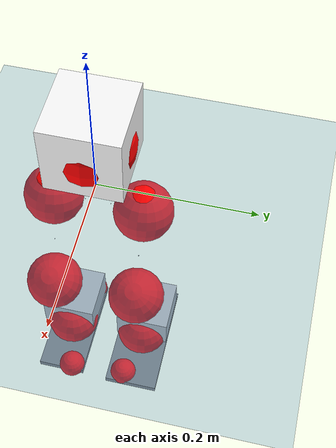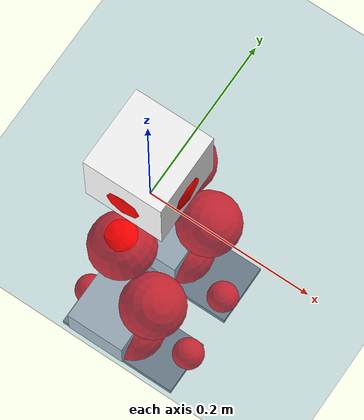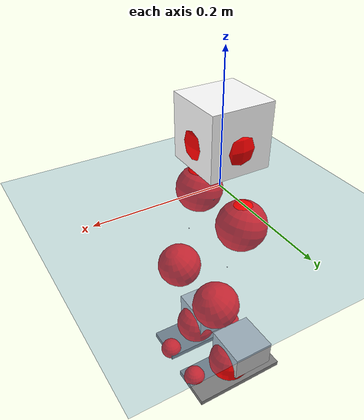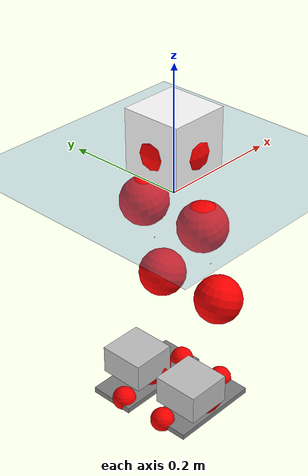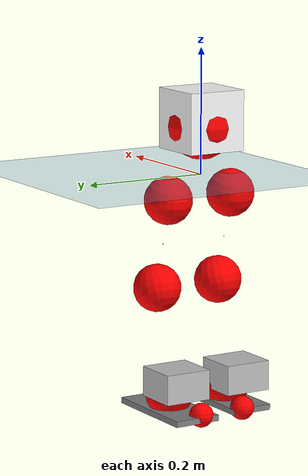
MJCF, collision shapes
<mujoco model="pi_12dof_release_v1">
  <compiler angle="radian" assetdir="assets" balanceinertia="true" inertiafromgeom="false"/>

  <option timestep="0.005" density="1.2" viscosity="2e-05"/>

  <size nkey="1"/>

  <visual>
    <quality shadowsize="8192"/>
    <map shadowclip="0.5"/>
  </visual>

  <default>
    <default class="/">
      <joint armature="0.01" damping="0.01" frictionloss="0.01"/>
      <geom contype="0" conaffinity="0" group="1" solref="-1000 -80"/>
      <site size="0.01 0.005 0.005" group="5"/>
      <general forcelimited="true" biastype="affine" gainprm="20" biasprm="0 -20 -0.5"/>
      <default class="foot">
        <geom size="0.0845 0.036 0.005" type="box" condim="6" group="4" priority="1" friction="0.9 0.2 0.2" solimp="0.015 1 0.005"/>
      </default>
      <default class="reward_collision_sphere">
        <geom group="5" rgba="1 0 0 1"/>
      </default>
    </default>
  </default>

  <asset>
    <texture type="skybox" colorspace="auto" name="//unnamed_texture_0" builtin="gradient" rgb1="0.95 0.95 0.95" rgb2="0.95 0.95 0.95" width="100" height="600"/>
    <texture type="2d" colorspace="auto" name="texplane" builtin="checker" rgb1="0.345 0.575 0.748" rgb2="0.345 0.575 0.748" markrgb="1 1 1" width="512" height="512"/>
    <material name="MatPlane" class="/" texture="texplane" texuniform="true" texrepeat="2 2" specular="0.9"/>
    <mesh name="baselink_1" class="/" file="baselink_1.STL"/>
    <mesh name="r_hip_pitch_link" class="/" file="r_hip_pitch_link.STL"/>
    <mesh name="r_hip_roll_link" class="/" file="r_hip_roll_link.STL"/>
    <mesh name="r_thigh_link" class="/" file="r_thigh_link.STL"/>
    <mesh name="r_calf_link" class="/" file="r_calf_link.STL"/>
    <mesh name="r_ankle_pitch_link" class="/" file="r_ankle_pitch_link.STL"/>
    <mesh name="r_ankle_roll_link" class="/" file="r_ankle_roll_link.STL"/>
    <mesh name="l_hip_pitch_link" class="/" file="l_hip_pitch_link.STL"/>
    <mesh name="l_hip_roll_link" class="/" file="l_hip_roll_link.STL"/>
    <mesh name="l_thigh_link" class="/" file="l_thigh_link.STL"/>
    <mesh name="l_calf_link" class="/" file="l_calf_link.STL"/>
    <mesh name="l_ankle_pitch_link" class="/" file="l_ankle_pitch_link.STL"/>
    <mesh name="l_ankle_roll_link" class="/" file="l_ankle_roll_link.STL"/>
  </asset>

  <worldbody>
    <geom name="floor" class="/" size="100 100 0.125" type="plane" group="0" material="MatPlane"/>
    <light name="toplight_shadow" class="/" pos="0 0 5" dir="0.0990148 0.0990148 -0.990148" type="directional" ambient="0.04 0.04 0.04" diffuse="0.55 0.55 0.55" specular="0.12 0.12 0.12"/>
    <light name="toplight_fill" class="/" pos="0 0 5" dir="0.0990148 0.0990148 -0.990148" type="directional" castshadow="false" ambient="0.04 0.04 0.04" diffuse="0.3 0.3 0.3" specular="0.08 0.08 0.08"/>
    <body name="trunk" pos="-0.000142618 -0.000200808 0.000246174" quat="1 2.49959e-05 1.06995e-05 2.95848e-06">
      <inertial pos="0.00161893 -0.00132222 0.044187" quat="0.69539 0.000501778 0.0132791 0.718509" mass="1.92355" diaginertia="0.0113778 0.00230227 0.00661127"/>
      <joint name="//unnamed_joint_0" type="free"/>
      <geom name="//unnamed_geom_1" class="/" type="mesh" density="0" rgba="1 1 1 1" mesh="baselink_1"/>
      <geom name="//unnamed_geom_2" class="/" size="0.048079 0.048079 0.048079" pos="0 0 0.0877735" type="box" rgba="1 1 1 1"/>
      <geom name="//unnamed_geom_3" class="reward_collision_sphere" size="0.0528869" pos="0 0 0.0768018"/>
      <site name="imu" class="/" pos="0.000236831 -0.00416193 -0.000953664" size="0.0096158"/>
      <camera name="track" class="/" pos="0 -1.51774 0" quat="0.707107 0.707107 0 0" mode="trackcom"/>
      <camera name="ego_camera" class="/" pos="0.0771526 0 0.19749" quat="-0.5 -0.5 0.5 0.5"/>
      <body name="r_hip_pitch_link" pos="-0.000235038 -0.0152299 -0.0346185" quat="0.992208 5.07752e-06 -0.124596 0.000115095">
        <inertial pos="0.000884288 -0.0428559 -0.00081987" quat="-0.0198806 0.706705 -0.0269002 0.706717" mass="0.329471" diaginertia="0.000124935 2.47658e-05 0.000133084"/>
        <joint name="r_hip_pitch_joint" class="/" pos="0 0 0" axis="0.00355286 -0.999989 -0.00304668" range="-1.74663 1.26655" armature="0.00950054" damping="0.0128744" frictionloss="0.00963802"/>
        <geom name="//unnamed_geom_4" class="/" type="mesh" density="0" rgba="0.75294 0.75294 0.75294 1" mesh="r_hip_pitch_link"/>
        <geom name="//unnamed_geom_5" class="/" size="0.00048079 0.00048079 0.00048079" type="box" rgba="0.75294 0.75294 0.75294 1"/>
        <body name="r_hip_roll_link" pos="0.00136511 -0.0401317 -0.000163482" quat="1 -2.51957e-05 -2.6264e-05 5.66892e-06">
          <inertial pos="-0.000928967 -0.000937075 -0.0666235" quat="0.707947 -0.0772578 -0.0797446 0.697484" mass="0.345695" diaginertia="0.000385458 6.97922e-05 0.000204791"/>
          <joint name="r_hip_roll_joint" class="/" pos="0 0 0" axis="-0.999996 0.00252537 -0.0014021" range="-0.118604 0.506746" armature="0.00979392" damping="0.00411991" frictionloss="0.0096419"/>
          <geom name="//unnamed_geom_6" class="/" type="mesh" density="0" rgba="0.75294 0.75294 0.75294 1" mesh="r_hip_roll_link"/>
          <geom name="//unnamed_geom_7" class="/" size="0.00048079 0.00048079 0.00048079" type="box" rgba="0.75294 0.75294 0.75294 1"/>
          <geom name="//unnamed_geom_8" class="reward_collision_sphere" size="0.0384632"/>
          <body name="r_thigh_link" pos="0.000607559 -0.000537483 -0.0759176" quat="1 -0.000318028 0.000184295 -0.000155012">
            <inertial pos="0.000209908 0.000602831 -0.0538361" quat="0.73744 0.675412 -3.88791e-05 0.000494708" mass="0.0998167" diaginertia="0.000144106 2.43233e-05 9.0457e-05"/>
            <joint name="r_thigh_joint" class="/" pos="0 0 0" axis="-2.63907e-05 -0.000118272 -1" range="-0.296633 0.593187" armature="0.0100579" damping="0.00559967" frictionloss="0.00967443"/>
            <geom name="//unnamed_geom_9" class="/" type="mesh" density="0" rgba="0.75294 0.75294 0.75294 1" mesh="r_thigh_link"/>
            <geom name="//unnamed_geom_10" class="/" size="0.00048079 0.00048079 0.00048079" type="box" rgba="0.75294 0.75294 0.75294 1"/>
            <body name="r_calf_link" pos="0.000286552 -0.00105209 -0.0771203" quat="0.947662 8.83555e-05 0.319275 -2.08772e-05">
              <inertial pos="0.000633085 -0.00076736 -0.0765845" quat="0.999982 -0.00299242 0.00063056 0.00513412" mass="0.716888" diaginertia="0.00408977 0.000860811 0.000279375"/>
              <joint name="r_calf_joint" class="/" pos="0 0 0" axis="0.00258099 -0.999995 0.00175466" range="-1.61143 0.629295" armature="0.00965728" damping="0.00750129" frictionloss="0.00914867"/>
              <geom name="//unnamed_geom_11" class="/" type="mesh" density="0" rgba="0.75294 0.75294 0.75294 1" mesh="r_calf_link"/>
              <geom name="//unnamed_geom_12" class="/" size="0.00048079 0.00048079 0.00048079" type="box" rgba="0.75294 0.75294 0.75294 1"/>
              <geom name="//unnamed_geom_13" class="reward_collision_sphere" size="0.0384632"/>
              <body name="r_ankle_pitch_link" pos="0.00183627 0.00235824 -0.154775" quat="0.98009 -0.00039348 -0.198555 -0.000362452">
                <inertial pos="0.0058484 0.000940566 -0.0003287" quat="0.00212221 0.704859 -0.00389932 0.709334" mass="0.157144" diaginertia="0.000357545 5.6158e-05 0.000193927"/>
                <joint name="r_ankle_pitch_joint" class="/" pos="0 0 0" axis="-0.00683605 -0.999962 -0.00546663" stiffness="0.000967166" range="-1.31846 0.528841" armature="0.00951922" damping="0.00707251" frictionloss="0.0100029"/>
                <geom name="//unnamed_geom_14" class="/" type="mesh" density="0" rgba="0.75294 0.75294 0.75294 1" mesh="r_ankle_pitch_link"/>
                <geom name="//unnamed_geom_15" class="/" size="0.0375016 0.0384632 0.0240395" type="box" rgba="0.75294 0.75294 0.75294 1"/>
                <body name="r_ankle_roll_link" pos="0.0768644 0.00260078 1.58959e-05" quat="1 0.000202089 0.000369379 0.000172153">
                  <inertial pos="-0.0255197 0.000257836 -0.0162512" quat="0.562133 0.42958 0.431958 0.559357" mass="0.462612" diaginertia="0.00130663 0.000259266 0.0004475"/>
                  <joint name="r_ankle_roll_joint" class="/" pos="0 0 0" axis="-0.999999 0.00105385 0.000729707" range="-0.183945 0.152994" armature="0.00952239" damping="0.012488" frictionloss="0.0100733"/>
                  <geom name="//unnamed_geom_16" class="/" type="mesh" density="0" rgba="0.75294 0.75294 0.75294 1" mesh="r_ankle_roll_link"/>
                  <geom name="//unnamed_geom_17" class="/" type="mesh" rgba="0.75294 0.75294 0.75294 1" mesh="r_ankle_roll_link"/>
                  <geom name="right_foot" class="foot" size="0.0763231 0.0341894 0.00459336" pos="-0.0524638 0 -0.0482754"/>
                  <geom name="//unnamed_geom_19" class="reward_collision_sphere" size="0.0384632" pos="-0.0514351 0 -0.0219434"/>
                  <geom name="//unnamed_geom_20" class="reward_collision_sphere" size="0.0192316" pos="0.0154305 0.0151774 -0.0438867"/>
                  <geom name="//unnamed_geom_21" class="reward_collision_sphere" size="0.0192316" pos="-0.123444 0.0151774 -0.0438867"/>
                  <site name="right_foot" class="foot" pos="-0.0524638 0 -0.0482754" size="0.0096158"/>
                </body>
              </body>
            </body>
          </body>
        </body>
      </body>
      <body name="l_hip_pitch_link" pos="-0.000936403 0.0175702 -0.0352405" quat="0.992216 -0.000240692 -0.124528 0.000169101">
        <inertial pos="0.000942084 0.040034 -0.00125095" quat="-0.0368059 0.706014 0.029516 0.706625" mass="0.340684" diaginertia="0.000145887 2.61384e-05 0.000157795"/>
        <joint name="l_hip_pitch_joint" class="/" pos="0 0 0" axis="-0.00015522 0.999999 -0.000995191" range="-1.25055 1.74959" armature="0.00972088" damping="0.00106558" frictionloss="0.00941867"/>
        <geom name="//unnamed_geom_22" class="/" type="mesh" density="0" rgba="0.75294 0.75294 0.75294 1" mesh="l_hip_pitch_link"/>
        <geom name="//unnamed_geom_23" class="/" size="0.00048079 0.00048079 0.00048079" type="box" rgba="0.75294 0.75294 0.75294 1"/>
        <body name="l_hip_roll_link" pos="0.000912731 0.0424664 -0.00142892" quat="1 9.55257e-06 5.85723e-06 2.81837e-06">
          <inertial pos="-0.000892034 -0.000360747 -0.0686088" quat="0.700448 -0.0761997 -0.08125 0.704958" mass="0.350124" diaginertia="0.000380713 6.83252e-05 0.000201576"/>
          <joint name="l_hip_roll_joint" class="/" pos="0 0 0" axis="-0.999999 0.00045412 0.00116989" range="-0.529007 0.113559" armature="0.00982018" damping="0.00732352" frictionloss="0.00922006"/>
          <geom name="//unnamed_geom_24" class="/" type="mesh" density="0" rgba="0.75294 0.75294 0.75294 1" mesh="l_hip_roll_link"/>
          <geom name="//unnamed_geom_25" class="/" size="0.00048079 0.00048079 0.00048079" type="box" rgba="0.75294 0.75294 0.75294 1"/>
          <geom name="//unnamed_geom_26" class="reward_collision_sphere" size="0.0384632"/>
          <body name="l_thigh_link" pos="0.000604893 -0.00222914 -0.0757478" quat="1 1.14883e-05 -2.688e-05 -1.67186e-05">
            <inertial pos="0.000532216 -0.00135106 -0.0521171" quat="0.675845 0.737043 0.000179023 0.000794599" mass="0.0984751" diaginertia="0.000144236 2.36667e-05 9.12046e-05"/>
            <joint name="l_thigh_joint" class="/" pos="0 0 0" axis="-8.28905e-05 5.79729e-06 -1" range="-0.590671 0.295995" armature="0.0099426" damping="0.0011411" frictionloss="0.0096819"/>
            <geom name="//unnamed_geom_27" class="/" type="mesh" density="0" rgba="0.75294 0.75294 0.75294 1" mesh="l_thigh_link"/>
            <geom name="//unnamed_geom_28" class="/" size="0.00048079 0.00048079 0.00048079" type="box" rgba="0.75294 0.75294 0.75294 1"/>
            <body name="l_calf_link" pos="-0.000799275 0.000173857 -0.0759225" quat="0.947613 0.000155479 0.319421 0.000276241">
              <inertial pos="-7.79262e-05 0.00283045 -0.0768721" quat="0.999984 0.00299641 -0.000225761 0.00469428" mass="0.713513" diaginertia="0.00401814 0.000862714 0.000279109"/>
              <joint name="l_calf_joint" class="/" pos="0 0 0" axis="0.00351428 0.999994 0.000242042" stiffness="0.000460572" range="-0.647291 1.66984" armature="0.00938651" damping="0.00687458" frictionloss="0.0092678"/>
              <geom name="//unnamed_geom_29" class="/" type="mesh" density="0" rgba="0.75294 0.75294 0.75294 1" mesh="l_calf_link"/>
              <geom name="//unnamed_geom_30" class="/" size="0.00048079 0.00048079 0.00048079" type="box" rgba="0.75294 0.75294 0.75294 1"/>
              <geom name="//unnamed_geom_31" class="reward_collision_sphere" size="0.0384632"/>
              <body name="l_ankle_pitch_link" pos="-0.000165864 0.00129048 -0.153949" quat="0.980094 -0.000380975 -0.198534 0.000495745">
                <inertial pos="0.00496784 -0.00164372 -0.000989153" quat="-0.00271498 0.706544 0.002148 0.707661" mass="0.15733" diaginertia="0.000358521 5.61018e-05 0.00019223"/>
                <joint name="l_ankle_pitch_joint" class="/" pos="0 0 0" axis="0.0017601 0.999998 -0.00111349" stiffness="0.00313474" range="-0.51694 1.2939" armature="0.0097927" damping="0.00710074" frictionloss="0.00961641"/>
                <geom name="//unnamed_geom_32" class="/" type="mesh" density="0" rgba="0.75294 0.75294 0.75294 1" mesh="l_ankle_pitch_link"/>
                <geom name="//unnamed_geom_33" class="/" size="0.0375016 0.0384632 0.0240395" type="box" rgba="0.75294 0.75294 0.75294 1"/>
                <body name="l_ankle_roll_link" pos="0.075361 -0.00132293 5.15661e-05" quat="1 -0.000125627 -0.000431083 0.000335228">
                  <inertial pos="-0.0234043 -0.000326594 -0.0152399" quat="0.562028 0.431885 0.434678 0.555568" mass="0.461854" diaginertia="0.00132438 0.000261028 0.000452294"/>
                  <joint name="l_ankle_roll_joint" class="/" pos="0 0 0" axis="-0.999952 0.0054977 0.00811308" stiffness="7.02724e-05" range="-0.119455 0.152535" armature="0.0102456" damping="0.0153104" frictionloss="0.00925446"/>
                  <geom name="//unnamed_geom_34" class="/" type="mesh" density="0" rgba="0.75294 0.75294 0.75294 1" mesh="l_ankle_roll_link"/>
                  <geom name="//unnamed_geom_35" class="/" type="mesh" rgba="0.75294 0.75294 0.75294 1" mesh="l_ankle_roll_link"/>
                  <geom name="left_foot" class="foot" size="0.0854243 0.0385622 0.00471715" pos="-0.0524638 0 -0.0482754"/>
                  <geom name="//unnamed_geom_37" class="reward_collision_sphere" size="0.0384632" pos="-0.0514351 0 -0.0219434"/>
                  <geom name="//unnamed_geom_38" class="reward_collision_sphere" size="0.0192316" pos="0.0154305 -0.0151774 -0.0438867"/>
                  <geom name="//unnamed_geom_39" class="reward_collision_sphere" size="0.0192316" pos="-0.123444 -0.0151774 -0.0438867"/>
                  <site name="left_foot" class="foot" pos="-0.0524638 0 -0.0482754" size="0.0096158"/>
                </body>
              </body>
            </body>
          </body>
        </body>
      </body>
    </body>
  </worldbody>

  <contact>
    <pair class="/" geom1="floor" geom2="right_foot" name="//unnamed_contact_1"/>
    <pair class="/" geom1="floor" geom2="left_foot" name="//unnamed_contact_0"/>
  </contact>

  <actuator>
    <general name="r_hip_pitch_joint" class="/" joint="r_hip_pitch_joint" forcerange="-20.3548 20.3548" gainprm="19.6563" biasprm="0 -19.6563 -0.474221"/>
    <general name="r_hip_roll_joint" class="/" joint="r_hip_roll_joint" forcerange="-20.1324 20.1324" gainprm="19.6563" biasprm="0 -19.6563 -0.474221"/>
    <general name="r_thigh_joint" class="/" joint="r_thigh_joint" forcerange="-19.9855 19.9855" gainprm="19.6563" biasprm="0 -19.6563 -0.474221"/>
    <general name="r_calf_joint" class="/" joint="r_calf_joint" forcerange="-19.4319 19.4319" gainprm="19.6563" biasprm="0 -19.6563 -0.474221"/>
    <general name="r_ankle_pitch_joint" class="/" joint="r_ankle_pitch_joint" forcerange="-21.2003 21.2003" gainprm="19.6563" biasprm="0 -19.6563 -0.474221"/>
    <general name="r_ankle_roll_joint" class="/" joint="r_ankle_roll_joint" forcerange="-21.2143 21.2143" gainprm="19.6563" biasprm="0 -19.6563 -0.474221"/>
    <general name="l_hip_pitch_joint" class="/" joint="l_hip_pitch_joint" forcerange="-21.6857 21.6857" gainprm="19.6563" biasprm="0 -19.6563 -0.474221"/>
    <general name="l_hip_roll_joint" class="/" joint="l_hip_roll_joint" forcerange="-20.5062 20.5062" gainprm="19.6563" biasprm="0 -19.6563 -0.474221"/>
    <general name="l_thigh_joint" class="/" joint="l_thigh_joint" forcerange="-20.5823 20.5823" gainprm="19.6563" biasprm="0 -19.6563 -0.474221"/>
    <general name="l_calf_joint" class="/" joint="l_calf_joint" forcerange="-21.2445 21.2445" gainprm="19.6563" biasprm="0 -19.6563 -0.474221"/>
    <general name="l_ankle_pitch_joint" class="/" joint="l_ankle_pitch_joint" forcerange="-21.2277 21.2277" gainprm="19.6563" biasprm="0 -19.6563 -0.474221"/>
    <general name="l_ankle_roll_joint" class="/" joint="l_ankle_roll_joint" forcerange="-19.8295 19.8295" gainprm="19.6563" biasprm="0 -19.6563 -0.474221"/>
  </actuator>

  <sensor>
    <gyro site="imu" name="imu_angular_velocity"/>
    <velocimeter site="imu" name="imu_linear_velocity"/>
    <framelinvel objtype="site" objname="left_foot" name="left_foot_global_linear_velocity"/>
    <framelinvel objtype="site" objname="right_foot" name="right_foot_global_linear_velocity"/>
  </sensor>

  <keyframe>
    <key name="home" qpos="0 0 0.291 1 0 0 0 0.4 0 0 -0.8 0.4 0 -0.4 0 0 0.8 -0.4 0"/>
  </keyframe>
</mujoco>
